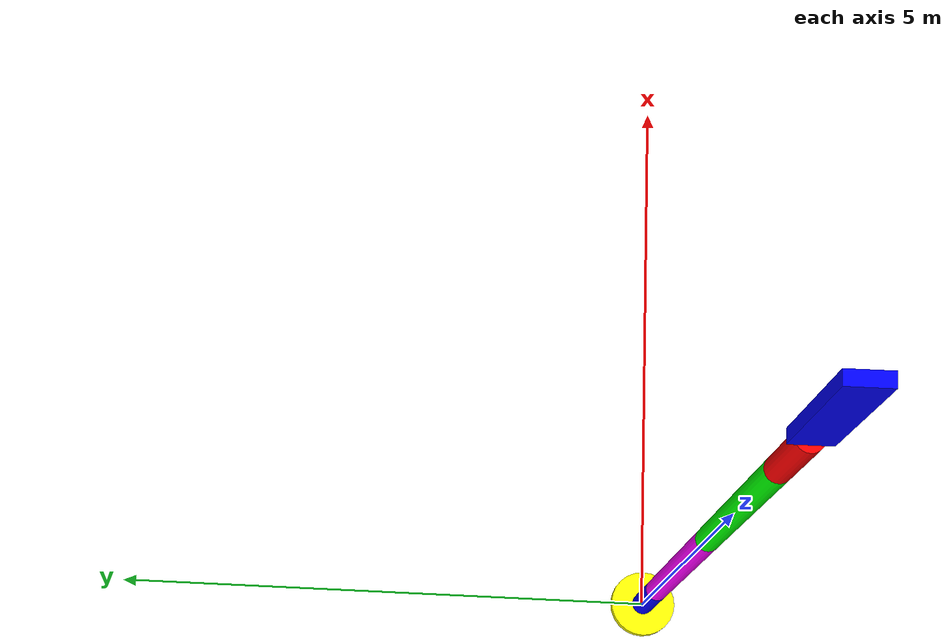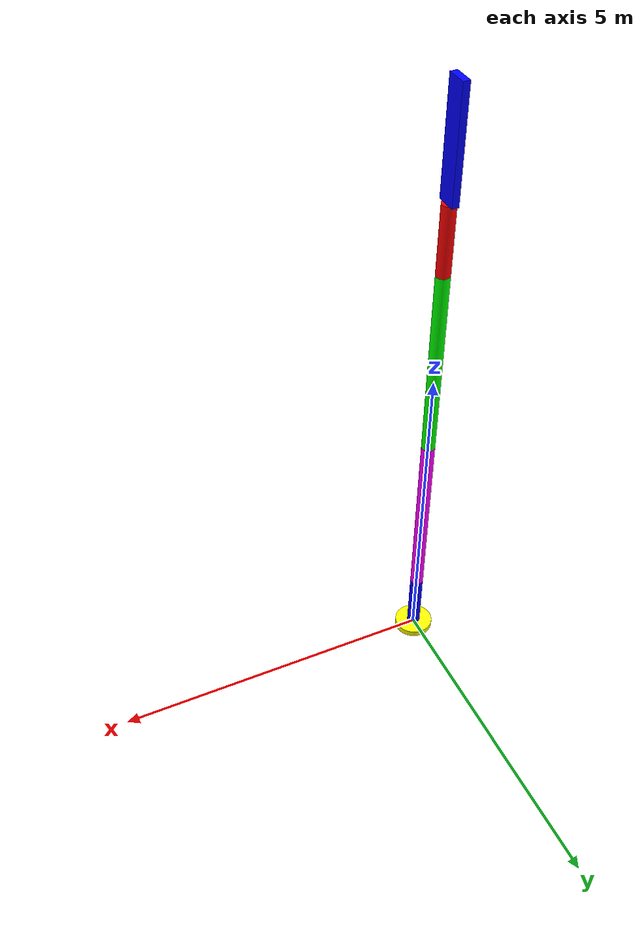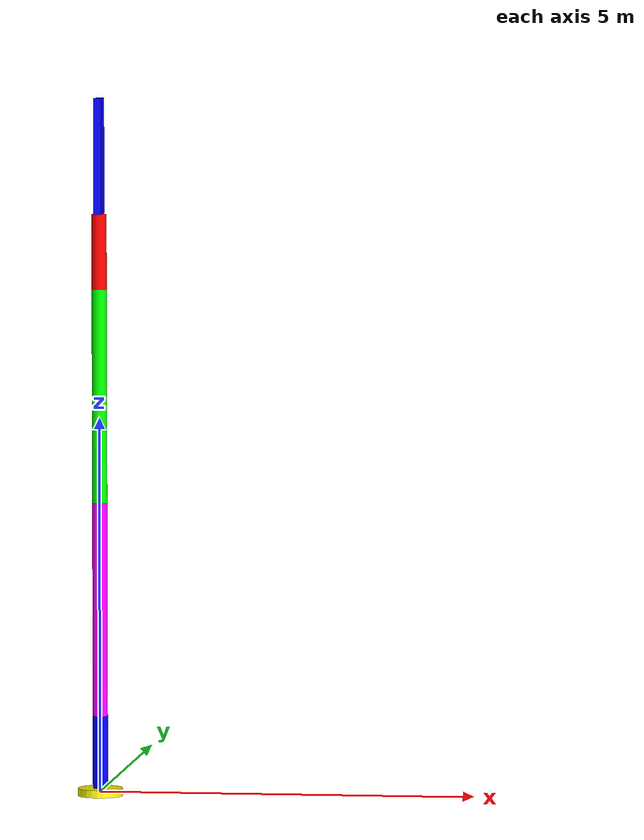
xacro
<?xml version="1.0"?>
<!-- http://wiki.ros.org/urdf/XML/link  -->
<robot name="skyline_robot" xmlns:xacro="http://ros.org/wiki/xacro">

<!-- Macros -->
	<!-- lengths -->
	<xacro:property name="base_height" value = "1.0155" />
	<xacro:property name="arm_length" value = "2.8455" />
	<xacro:property name="wrist_length" value = "0.998302" />
	<xacro:property name="claw_length" value = "1.534561" />

	<!-- pyshical limits -->
	<xacro:macro name="joint_susan_y_limit">
		<limit effort="300" velocity="2.0" lower="0" upper="${2*pi}" />
	</xacro:macro>

	<xacro:macro name="base_arm_limit">
		<limit effort="300" velocity="2.0" lower="${-1*pi/2}" upper="${pi/2}" />
	</xacro:macro>

	<xacro:macro name="arm_joint_limit">
		<limit effort="300" velocity="2.0" lower="0" upper="${pi}" />
	</xacro:macro>

	<xacro:macro name="wrist_pitch_limit">
		<limit effort="300" velocity="2.0" lower="${-1*pi/2}" upper="${pi/2}" />
	</xacro:macro>

	<xacro:macro name="wrist_yaw_limit">
		<limit effort="300" velocity="2.0" lower="${-1*pi/2}" upper="${pi/2}" />
	</xacro:macro>

	<!-- axis of rotations -->
	<xacro:property name="yaw" value = "0 0 1" />
	<xacro:property name="pitch" value = "0 1 0" />
	<xacro:property name="roll" value = "1 0 0" />

	<!-- Base link -->
	<link name="link_base">
		<visual>
			<geometry>
				<cylinder length="0.1" radius="0.3"/>
			</geometry>

			<!--origin - the reference frame of the visul element with resppect to the reference frame of the link -->
			<!-- rpy -r is roll, p-pitch, and y -yaw -->
			<!-- xyz - x, y, z -offsets -->
			<origin rpy="0 0 0" xyz="0 0 0"/>
			<material name = "yellow">
				<color rgba="1 1 0 1"/>
			</material>
		</visual>
	</link>

<!-- Lazy Susan Yaw Joint -->
	<!-- joint_susan_y -->
	<joint name="joint_susan_y" type="revolute">
		<parent link="link_base"/>
		<child link="link_susan_y"/>
			<origin xyz="0 0 0"/>
			<axis xyz="${yaw}"/>
			<xacro:joint_susan_y_limit/>
	</joint>

	<!-- link_susan -->
	<link name="link_susan_y">
	<visual>
		<geometry>
			<cylinder length="${base_height}" radius="0.1"/>
		</geometry>

		<origin rpy="0 0 0" xyz="0 0 ${base_height/2}"/>
		<material name = "blue">
			<color rgba="0 0 1 1"/>
		</material>
	</visual>
	</link>

<!-- Lazy Susan Pitch Joint -->
	<!-- joint_susan_pitch -->
	<joint name="joint_susan_p" type="revolute">
		<parent link="link_susan_y"/>
		<child link="link_susan_p"/>
			<origin xyz="0 0 ${base_height}"/>
			<axis xyz="${pitch}"/>
			<xacro:base_arm_limit/>
	</joint>

	<!-- link_susan_pitch -->
	<link name="link_susan_p">
	<visual>
		<geometry>
			<cylinder length="${arm_length}" radius="0.1"/>
		</geometry>

		<origin rpy="0 0 0" xyz="0 0 ${arm_length/2}"/>
		<material name = "purple">
			<color rgba="1 0 1 1"/>
		</material>
	</visual>
	</link>

<!-- Mid Arm Joint -->
	<!-- joint_mid -->
	<joint name="joint_mid_p" type="revolute">
		<parent link="link_susan_p"/>
		<child link="link_mid_p"/>
			<origin xyz="0 0 ${arm_length}"/>
			<axis xyz="${pitch}"/>
			<xacro:arm_joint_limit/>
	</joint>

	<!-- link_mid -->
	<link name="link_mid_p">
	<visual>
		<geometry>
			<cylinder length="${arm_length}" radius="0.1"/>
		</geometry>

		<origin rpy="0 0 0" xyz="0 0 ${arm_length/2}"/>
		<material name = "green">
			<color rgba="0 1 0 1"/>
		</material>
	</visual>
	</link>

<!-- Wrist Pitch Joint -->
	<!-- joint_wrist_pitch -->
	<joint name="joint_wrist_p" type="revolute">
		<parent link="link_mid_p"/>
		<child link="link_wrist_p"/>
			<origin xyz="0 0 ${arm_length}"/>
			<axis xyz="${pitch}"/>
			<xacro:wrist_pitch_limit/>
		</joint>

	<!-- link_wrist_pitch -->
	<link name="link_wrist_p">
	<visual>
		<geometry>
			<cylinder length="${wrist_length}" radius="0.1"/>
		</geometry>

		<origin rpy="0 0 0" xyz="0 0 ${wrist_length/2}"/>
		<material name = "red">
			<color rgba="1 0 0 1"/>
		</material>
	</visual>
	</link>

<!-- Wrist Roll Joint -->
	<!-- joint_wrist_roll -->
	<joint name="joint_wrist_r" type="revolute">
		<parent link="link_wrist_p"/>
		<child link="link_wrist_y"/>
			<origin xyz="0 0 ${wrist_length}"/>
			<axis xyz="${yaw}"/>
			<xacro:wrist_yaw_limit/>
	</joint>

	<!-- link_wrist_roll -->
	<link name="link_wrist_y">
	<visual>
		<geometry>
			<box size="0.1 0.3 ${claw_length}" />
		</geometry>

		<origin rpy="0 0 0" xyz="0 0 ${claw_length/2}"/>
		<material name = "blue">
			<color rgba="0 0 1 1"/>
		</material>
	</visual>
	</link>

</robot>
